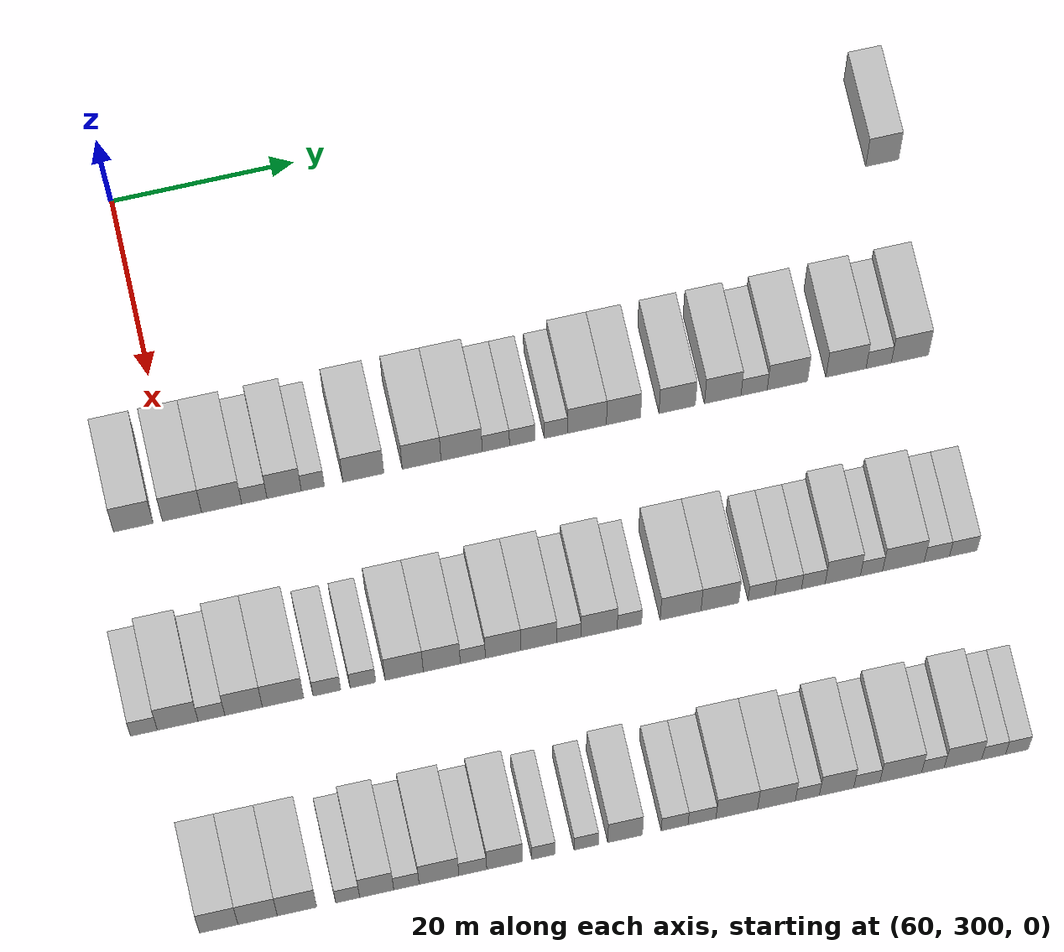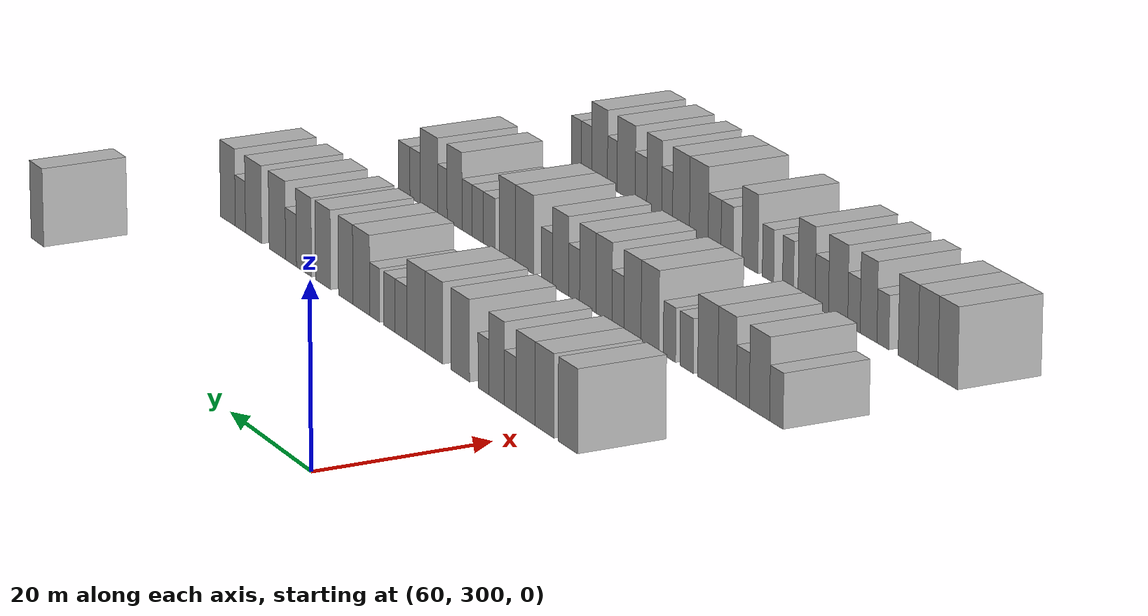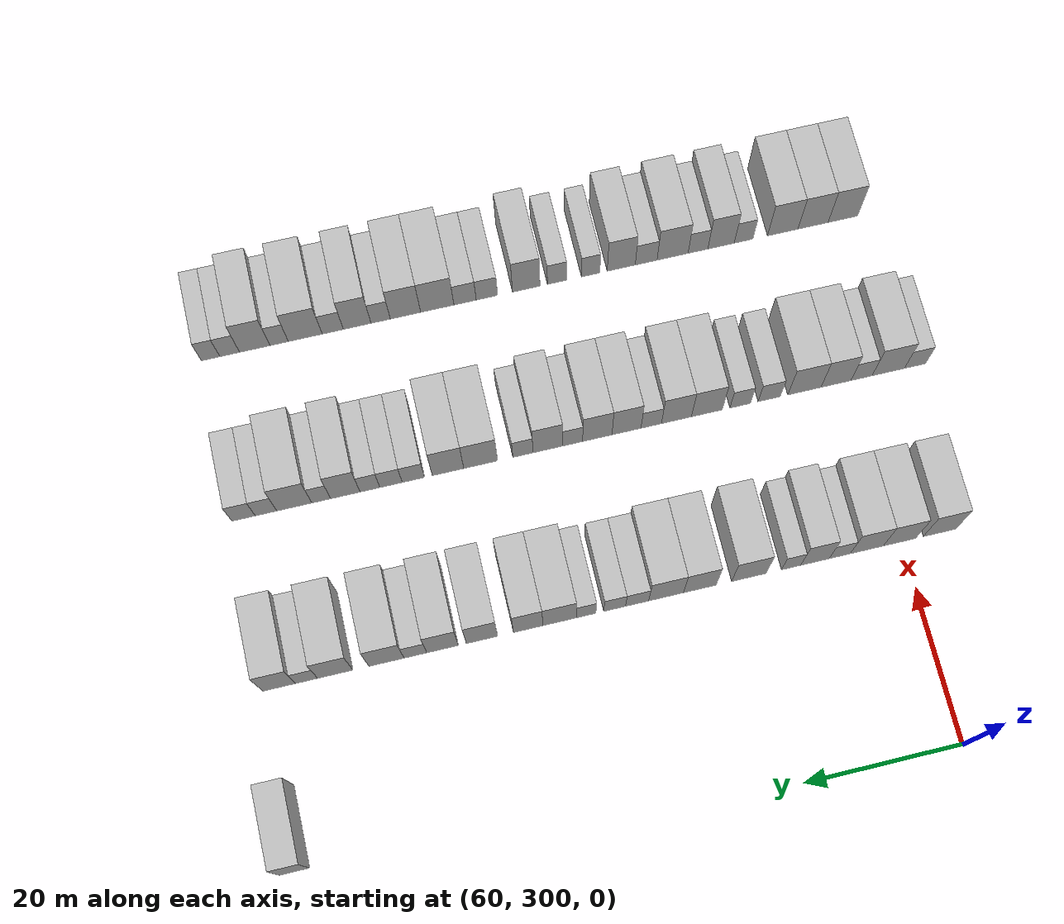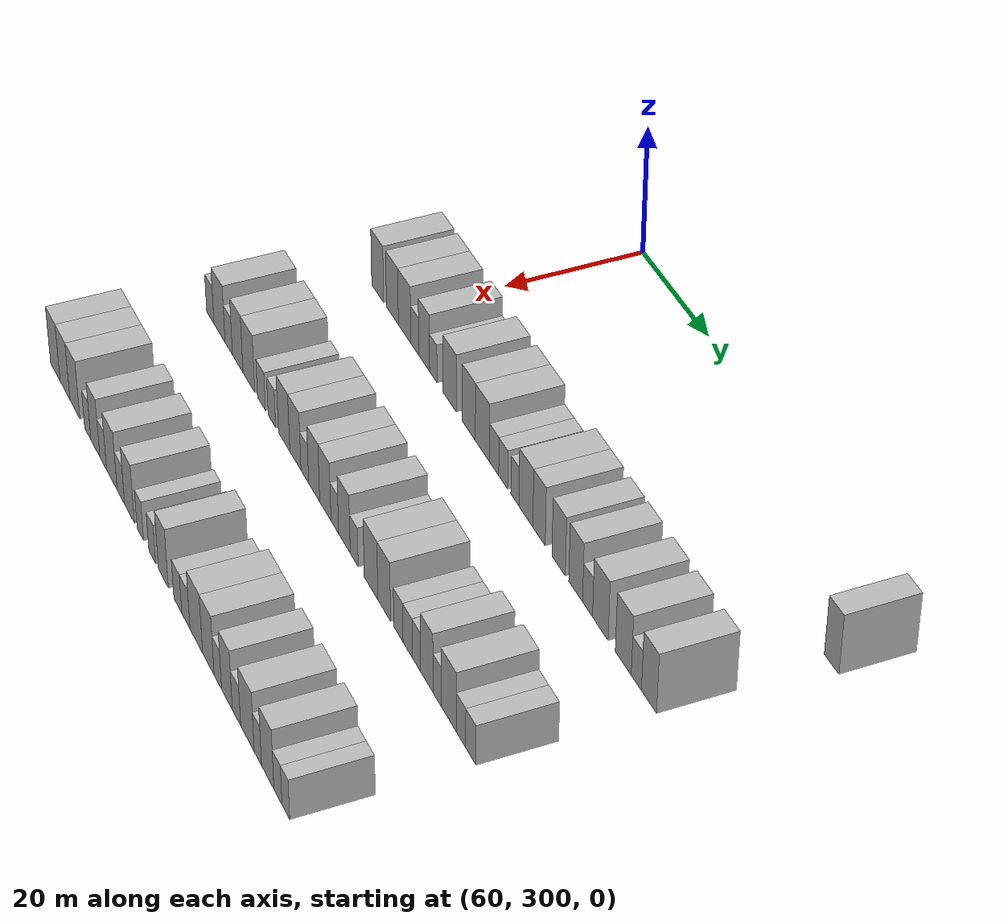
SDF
<sdf version="1.6">
 <world name="default">
  <model name="building_564">
   <static>1</static>
   <pose>69.0000 381.5241 0 0.000000 0.000000 0.000000</pose>
   <link name="link">
    <pose>0 0 4.50 0 0 0</pose>
    <collision name="collision"><geometry><box><size>10.0000 3.6331 9.0000</size></box></geometry></collision>
    <visual name="visual">
     <cast_shadows>0</cast_shadows>
     <geometry><box><size>10.0000 3.6331 9.0000</size></box></geometry>
     <material>
      <script>
       <uri>model://HANNAS_wall/materials/scripts</uri>
       <uri>model://HANNAS_wall/materials/textures</uri>
       <name>vrc/HANNAS_wall</name>
      </script>
     </material>
    </visual>
   </link>
  </model>
  <model name="building_737">
   <static>1</static>
   <pose>91.0000 295.0575 0 0.000000 0.000000 0.000000</pose>
   <link name="link">
    <pose>0 0 4.50 0 0 0</pose>
    <collision name="collision"><geometry><box><size>10.0000 4.2595 9.0000</size></box></geometry></collision>
    <visual name="visual">
     <cast_shadows>0</cast_shadows>
     <geometry><box><size>10.0000 4.2595 9.0000</size></box></geometry>
     <material>
      <script>
       <uri>model://HANNAS_wall/materials/scripts</uri>
       <uri>model://HANNAS_wall/materials/textures</uri>
       <name>vrc/HANNAS_wall</name>
      </script>
     </material>
    </visual>
   </link>
  </model>
  <model name="building_738">
   <static>1</static>
   <pose>91.0000 300.2954 0 0.000000 0.000000 0.000000</pose>
   <link name="link">
    <pose>0 0 4.50 0 0 0</pose>
    <collision name="collision"><geometry><box><size>10.0000 4.2164 9.0000</size></box></geometry></collision>
    <visual name="visual">
     <cast_shadows>0</cast_shadows>
     <geometry><box><size>10.0000 4.2164 9.0000</size></box></geometry>
     <material>
      <script>
       <uri>model://HANNAS_wall/materials/scripts</uri>
       <uri>model://HANNAS_wall/materials/textures</uri>
       <name>vrc/HANNAS_wall</name>
      </script>
     </material>
    </visual>
   </link>
  </model>
  <model name="building_739">
   <static>1</static>
   <pose>91.0000 304.5618 0 0.000000 0.000000 0.000000</pose>
   <link name="link">
    <pose>0 0 4.50 0 0 0</pose>
    <collision name="collision"><geometry><box><size>10.0000 4.3162 9.0000</size></box></geometry></collision>
    <visual name="visual">
     <cast_shadows>0</cast_shadows>
     <geometry><box><size>10.0000 4.3162 9.0000</size></box></geometry>
     <material>
      <script>
       <uri>model://HANNAS_wall/materials/scripts</uri>
       <uri>model://HANNAS_wall/materials/textures</uri>
       <name>vrc/HANNAS_wall</name>
      </script>
     </material>
    </visual>
   </link>
  </model>
  <model name="building_740">
   <static>1</static>
   <pose>91.0000 308.0821 0 0.000000 0.000000 0.000000</pose>
   <link name="link">
    <pose>0 0 3.00 0 0 0</pose>
    <collision name="collision"><geometry><box><size>10.0000 2.7245 6.0000</size></box></geometry></collision>
    <visual name="visual">
     <cast_shadows>0</cast_shadows>
     <geometry><box><size>10.0000 2.7245 6.0000</size></box></geometry>
     <material>
      <script>
       <uri>model://HANNAS_wall/materials/scripts</uri>
       <uri>model://HANNAS_wall/materials/textures</uri>
       <name>vrc/HANNAS_wall</name>
      </script>
     </material>
    </visual>
   </link>
  </model>
  <model name="building_741">
   <static>1</static>
   <pose>91.0000 311.2947 0 0.000000 0.000000 0.000000</pose>
   <link name="link">
    <pose>0 0 4.50 0 0 0</pose>
    <collision name="collision"><geometry><box><size>10.0000 3.7006 9.0000</size></box></geometry></collision>
    <visual name="visual">
     <cast_shadows>0</cast_shadows>
     <geometry><box><size>10.0000 3.7006 9.0000</size></box></geometry>
     <material>
      <script>
       <uri>model://HANNAS_wall/materials/scripts</uri>
       <uri>model://HANNAS_wall/materials/textures</uri>
       <name>vrc/HANNAS_wall</name>
      </script>
     </material>
    </visual>
   </link>
  </model>
  <model name="building_742">
   <static>1</static>
   <pose>91.0000 314.3877 0 0.000000 0.000000 0.000000</pose>
   <link name="link">
    <pose>0 0 3.00 0 0 0</pose>
    <collision name="collision"><geometry><box><size>10.0000 2.4853 6.0000</size></box></geometry></collision>
    <visual name="visual">
     <cast_shadows>0</cast_shadows>
     <geometry><box><size>10.0000 2.4853 6.0000</size></box></geometry>
     <material>
      <script>
       <uri>model://HANNAS_wall/materials/scripts</uri>
       <uri>model://HANNAS_wall/materials/textures</uri>
       <name>vrc/HANNAS_wall</name>
      </script>
     </material>
    </visual>
   </link>
  </model>
  <model name="building_743">
   <static>1</static>
   <pose>91.0000 319.8427 0 0.000000 0.000000 0.000000</pose>
   <link name="link">
    <pose>0 0 4.50 0 0 0</pose>
    <collision name="collision"><geometry><box><size>10.0000 4.4247 9.0000</size></box></geometry></collision>
    <visual name="visual">
     <cast_shadows>0</cast_shadows>
     <geometry><box><size>10.0000 4.4247 9.0000</size></box></geometry>
     <material>
      <script>
       <uri>model://HANNAS_wall/materials/scripts</uri>
       <uri>model://HANNAS_wall/materials/textures</uri>
       <name>vrc/HANNAS_wall</name>
      </script>
     </material>
    </visual>
   </link>
  </model>
  <model name="building_744">
   <static>1</static>
   <pose>91.0000 326.1490 0 0.000000 0.000000 0.000000</pose>
   <link name="link">
    <pose>0 0 4.50 0 0 0</pose>
    <collision name="collision"><geometry><box><size>10.0000 4.1880 9.0000</size></box></geometry></collision>
    <visual name="visual">
     <cast_shadows>0</cast_shadows>
     <geometry><box><size>10.0000 4.1880 9.0000</size></box></geometry>
     <material>
      <script>
       <uri>model://HANNAS_wall/materials/scripts</uri>
       <uri>model://HANNAS_wall/materials/textures</uri>
       <name>vrc/HANNAS_wall</name>
      </script>
     </material>
    </visual>
   </link>
  </model>
  <model name="building_745">
   <static>1</static>
   <pose>91.0000 330.4716 0 0.000000 0.000000 0.000000</pose>
   <link name="link">
    <pose>0 0 4.50 0 0 0</pose>
    <collision name="collision"><geometry><box><size>10.0000 4.4573 9.0000</size></box></geometry></collision>
    <visual name="visual">
     <cast_shadows>0</cast_shadows>
     <geometry><box><size>10.0000 4.4573 9.0000</size></box></geometry>
     <material>
      <script>
       <uri>model://HANNAS_wall/materials/scripts</uri>
       <uri>model://HANNAS_wall/materials/textures</uri>
       <name>vrc/HANNAS_wall</name>
      </script>
     </material>
    </visual>
   </link>
  </model>
  <model name="building_746">
   <static>1</static>
   <pose>91.0000 334.1785 0 0.000000 0.000000 0.000000</pose>
   <link name="link">
    <pose>0 0 3.00 0 0 0</pose>
    <collision name="collision"><geometry><box><size>10.0000 2.9564 6.0000</size></box></geometry></collision>
    <visual name="visual">
     <cast_shadows>0</cast_shadows>
     <geometry><box><size>10.0000 2.9564 6.0000</size></box></geometry>
     <material>
      <script>
       <uri>model://HANNAS_wall/materials/scripts</uri>
       <uri>model://HANNAS_wall/materials/textures</uri>
       <name>vrc/HANNAS_wall</name>
      </script>
     </material>
    </visual>
   </link>
  </model>
  <model name="building_747">
   <static>1</static>
   <pose>91.0000 337.0452 0 0.000000 0.000000 0.000000</pose>
   <link name="link">
    <pose>0 0 3.00 0 0 0</pose>
    <collision name="collision"><geometry><box><size>10.0000 2.7771 6.0000</size></box></geometry></collision>
    <visual name="visual">
     <cast_shadows>0</cast_shadows>
     <geometry><box><size>10.0000 2.7771 6.0000</size></box></geometry>
     <material>
      <script>
       <uri>model://HANNAS_wall/materials/scripts</uri>
       <uri>model://HANNAS_wall/materials/textures</uri>
       <name>vrc/HANNAS_wall</name>
      </script>
     </material>
    </visual>
   </link>
  </model>
  <model name="building_748">
   <static>1</static>
   <pose>91.0000 340.6838 0 0.000000 0.000000 0.000000</pose>
   <link name="link">
    <pose>0 0 3.00 0 0 0</pose>
    <collision name="collision"><geometry><box><size>10.0000 2.5001 6.0000</size></box></geometry></collision>
    <visual name="visual">
     <cast_shadows>0</cast_shadows>
     <geometry><box><size>10.0000 2.5001 6.0000</size></box></geometry>
     <material>
      <script>
       <uri>model://HANNAS_wall/materials/scripts</uri>
       <uri>model://HANNAS_wall/materials/textures</uri>
       <name>vrc/HANNAS_wall</name>
      </script>
     </material>
    </visual>
   </link>
  </model>
  <model name="building_749">
   <static>1</static>
   <pose>91.0000 344.0505 0 0.000000 0.000000 0.000000</pose>
   <link name="link">
    <pose>0 0 4.50 0 0 0</pose>
    <collision name="collision"><geometry><box><size>10.0000 4.2334 9.0000</size></box></geometry></collision>
    <visual name="visual">
     <cast_shadows>0</cast_shadows>
     <geometry><box><size>10.0000 4.2334 9.0000</size></box></geometry>
     <material>
      <script>
       <uri>model://HANNAS_wall/materials/scripts</uri>
       <uri>model://HANNAS_wall/materials/textures</uri>
       <name>vrc/HANNAS_wall</name>
      </script>
     </material>
    </visual>
   </link>
  </model>
  <model name="building_750">
   <static>1</static>
   <pose>91.0000 348.0234 0 0.000000 0.000000 0.000000</pose>
   <link name="link">
    <pose>0 0 4.50 0 0 0</pose>
    <collision name="collision"><geometry><box><size>10.0000 3.7123 9.0000</size></box></geometry></collision>
    <visual name="visual">
     <cast_shadows>0</cast_shadows>
     <geometry><box><size>10.0000 3.7123 9.0000</size></box></geometry>
     <material>
      <script>
       <uri>model://HANNAS_wall/materials/scripts</uri>
       <uri>model://HANNAS_wall/materials/textures</uri>
       <name>vrc/HANNAS_wall</name>
      </script>
     </material>
    </visual>
   </link>
  </model>
  <model name="building_751">
   <static>1</static>
   <pose>91.0000 353.8533 0 0.000000 0.000000 0.000000</pose>
   <link name="link">
    <pose>0 0 4.50 0 0 0</pose>
    <collision name="collision"><geometry><box><size>10.0000 3.9474 9.0000</size></box></geometry></collision>
    <visual name="visual">
     <cast_shadows>0</cast_shadows>
     <geometry><box><size>10.0000 3.9474 9.0000</size></box></geometry>
     <material>
      <script>
       <uri>model://HANNAS_wall/materials/scripts</uri>
       <uri>model://HANNAS_wall/materials/textures</uri>
       <name>vrc/HANNAS_wall</name>
      </script>
     </material>
    </visual>
   </link>
  </model>
  <model name="building_752">
   <static>1</static>
   <pose>91.0000 358.8148 0 0.000000 0.000000 0.000000</pose>
   <link name="link">
    <pose>0 0 4.50 0 0 0</pose>
    <collision name="collision"><geometry><box><size>10.0000 3.9758 9.0000</size></box></geometry></collision>
    <visual name="visual">
     <cast_shadows>0</cast_shadows>
     <geometry><box><size>10.0000 3.9758 9.0000</size></box></geometry>
     <material>
      <script>
       <uri>model://HANNAS_wall/materials/scripts</uri>
       <uri>model://HANNAS_wall/materials/textures</uri>
       <name>vrc/HANNAS_wall</name>
      </script>
     </material>
    </visual>
   </link>
  </model>
  <model name="building_753">
   <static>1</static>
   <pose>91.0000 362.2279 0 0.000000 0.000000 0.000000</pose>
   <link name="link">
    <pose>0 0 3.00 0 0 0</pose>
    <collision name="collision"><geometry><box><size>10.0000 2.8504 6.0000</size></box></geometry></collision>
    <visual name="visual">
     <cast_shadows>0</cast_shadows>
     <geometry><box><size>10.0000 2.8504 6.0000</size></box></geometry>
     <material>
      <script>
       <uri>model://HANNAS_wall/materials/scripts</uri>
       <uri>model://HANNAS_wall/materials/textures</uri>
       <name>vrc/HANNAS_wall</name>
      </script>
     </material>
    </visual>
   </link>
  </model>
  <model name="building_754">
   <static>1</static>
   <pose>91.0000 365.8547 0 0.000000 0.000000 0.000000</pose>
   <link name="link">
    <pose>0 0 4.50 0 0 0</pose>
    <collision name="collision"><geometry><box><size>10.0000 4.4030 9.0000</size></box></geometry></collision>
    <visual name="visual">
     <cast_shadows>0</cast_shadows>
     <geometry><box><size>10.0000 4.4030 9.0000</size></box></geometry>
     <material>
      <script>
       <uri>model://HANNAS_wall/materials/scripts</uri>
       <uri>model://HANNAS_wall/materials/textures</uri>
       <name>vrc/HANNAS_wall</name>
      </script>
     </material>
    </visual>
   </link>
  </model>
  <model name="building_755">
   <static>1</static>
   <pose>91.0000 372.2467 0 0.000000 0.000000 0.000000</pose>
   <link name="link">
    <pose>0 0 4.50 0 0 0</pose>
    <collision name="collision"><geometry><box><size>10.0000 4.3811 9.0000</size></box></geometry></collision>
    <visual name="visual">
     <cast_shadows>0</cast_shadows>
     <geometry><box><size>10.0000 4.3811 9.0000</size></box></geometry>
     <material>
      <script>
       <uri>model://HANNAS_wall/materials/scripts</uri>
       <uri>model://HANNAS_wall/materials/textures</uri>
       <name>vrc/HANNAS_wall</name>
      </script>
     </material>
    </visual>
   </link>
  </model>
  <model name="building_756">
   <static>1</static>
   <pose>91.0000 375.8169 0 0.000000 0.000000 0.000000</pose>
   <link name="link">
    <pose>0 0 3.00 0 0 0</pose>
    <collision name="collision"><geometry><box><size>10.0000 2.7593 6.0000</size></box></geometry></collision>
    <visual name="visual">
     <cast_shadows>0</cast_shadows>
     <geometry><box><size>10.0000 2.7593 6.0000</size></box></geometry>
     <material>
      <script>
       <uri>model://HANNAS_wall/materials/scripts</uri>
       <uri>model://HANNAS_wall/materials/textures</uri>
       <name>vrc/HANNAS_wall</name>
      </script>
     </material>
    </visual>
   </link>
  </model>
  <model name="building_757">
   <static>1</static>
   <pose>91.0000 379.2247 0 0.000000 0.000000 0.000000</pose>
   <link name="link">
    <pose>0 0 4.50 0 0 0</pose>
    <collision name="collision"><geometry><box><size>10.0000 4.0563 9.0000</size></box></geometry></collision>
    <visual name="visual">
     <cast_shadows>0</cast_shadows>
     <geometry><box><size>10.0000 4.0563 9.0000</size></box></geometry>
     <material>
      <script>
       <uri>model://HANNAS_wall/materials/scripts</uri>
       <uri>model://HANNAS_wall/materials/textures</uri>
       <name>vrc/HANNAS_wall</name>
      </script>
     </material>
    </visual>
   </link>
  </model>
  <model name="building_920">
   <static>1</static>
   <pose>113.0000 291.6880 0 0.000000 0.000000 0.000000</pose>
   <link name="link">
    <pose>0 0 3.00 0 0 0</pose>
    <collision name="collision"><geometry><box><size>10.0000 2.8506 6.0000</size></box></geometry></collision>
    <visual name="visual">
     <cast_shadows>0</cast_shadows>
     <geometry><box><size>10.0000 2.8506 6.0000</size></box></geometry>
     <material>
      <script>
       <uri>model://HANNAS_wall/materials/scripts</uri>
       <uri>model://HANNAS_wall/materials/textures</uri>
       <name>vrc/HANNAS_wall</name>
      </script>
     </material>
    </visual>
   </link>
  </model>
  <model name="building_921">
   <static>1</static>
   <pose>113.0000 295.2827 0 0.000000 0.000000 0.000000</pose>
   <link name="link">
    <pose>0 0 4.50 0 0 0</pose>
    <collision name="collision"><geometry><box><size>10.0000 4.3388 9.0000</size></box></geometry></collision>
    <visual name="visual">
     <cast_shadows>0</cast_shadows>
     <geometry><box><size>10.0000 4.3388 9.0000</size></box></geometry>
     <material>
      <script>
       <uri>model://HANNAS_wall/materials/scripts</uri>
       <uri>model://HANNAS_wall/materials/textures</uri>
       <name>vrc/HANNAS_wall</name>
      </script>
     </material>
    </visual>
   </link>
  </model>
  <model name="building_922">
   <static>1</static>
   <pose>113.0000 298.8748 0 0.000000 0.000000 0.000000</pose>
   <link name="link">
    <pose>0 0 3.00 0 0 0</pose>
    <collision name="collision"><geometry><box><size>10.0000 2.8454 6.0000</size></box></geometry></collision>
    <visual name="visual">
     <cast_shadows>0</cast_shadows>
     <geometry><box><size>10.0000 2.8454 6.0000</size></box></geometry>
     <material>
      <script>
       <uri>model://HANNAS_wall/materials/scripts</uri>
       <uri>model://HANNAS_wall/materials/textures</uri>
       <name>vrc/HANNAS_wall</name>
      </script>
     </material>
    </visual>
   </link>
  </model>
  <model name="building_923">
   <static>1</static>
   <pose>113.0000 302.3006 0 0.000000 0.000000 0.000000</pose>
   <link name="link">
    <pose>0 0 4.50 0 0 0</pose>
    <collision name="collision"><geometry><box><size>10.0000 4.0062 9.0000</size></box></geometry></collision>
    <visual name="visual">
     <cast_shadows>0</cast_shadows>
     <geometry><box><size>10.0000 4.0062 9.0000</size></box></geometry>
     <material>
      <script>
       <uri>model://HANNAS_wall/materials/scripts</uri>
       <uri>model://HANNAS_wall/materials/textures</uri>
       <name>vrc/HANNAS_wall</name>
      </script>
     </material>
    </visual>
   </link>
  </model>
  <model name="building_924">
   <static>1</static>
   <pose>113.0000 306.5124 0 0.000000 0.000000 0.000000</pose>
   <link name="link">
    <pose>0 0 4.50 0 0 0</pose>
    <collision name="collision"><geometry><box><size>10.0000 4.4174 9.0000</size></box></geometry></collision>
    <visual name="visual">
     <cast_shadows>0</cast_shadows>
     <geometry><box><size>10.0000 4.4174 9.0000</size></box></geometry>
     <material>
      <script>
       <uri>model://HANNAS_wall/materials/scripts</uri>
       <uri>model://HANNAS_wall/materials/textures</uri>
       <name>vrc/HANNAS_wall</name>
      </script>
     </material>
    </visual>
   </link>
  </model>
  <model name="building_925">
   <static>1</static>
   <pose>113.0000 311.1987 0 0.000000 0.000000 0.000000</pose>
   <link name="link">
    <pose>0 0 3.00 0 0 0</pose>
    <collision name="collision"><geometry><box><size>10.0000 2.9552 6.0000</size></box></geometry></collision>
    <visual name="visual">
     <cast_shadows>0</cast_shadows>
     <geometry><box><size>10.0000 2.9552 6.0000</size></box></geometry>
     <material>
      <script>
       <uri>model://HANNAS_wall/materials/scripts</uri>
       <uri>model://HANNAS_wall/materials/textures</uri>
       <name>vrc/HANNAS_wall</name>
      </script>
     </material>
    </visual>
   </link>
  </model>
  <model name="building_926">
   <static>1</static>
   <pose>113.0000 315.0466 0 0.000000 0.000000 0.000000</pose>
   <link name="link">
    <pose>0 0 3.00 0 0 0</pose>
    <collision name="collision"><geometry><box><size>10.0000 2.7404 6.0000</size></box></geometry></collision>
    <visual name="visual">
     <cast_shadows>0</cast_shadows>
     <geometry><box><size>10.0000 2.7404 6.0000</size></box></geometry>
     <material>
      <script>
       <uri>model://HANNAS_wall/materials/scripts</uri>
       <uri>model://HANNAS_wall/materials/textures</uri>
       <name>vrc/HANNAS_wall</name>
      </script>
     </material>
    </visual>
   </link>
  </model>
  <model name="building_927">
   <static>1</static>
   <pose>113.0000 319.4593 0 0.000000 0.000000 0.000000</pose>
   <link name="link">
    <pose>0 0 4.50 0 0 0</pose>
    <collision name="collision"><geometry><box><size>10.0000 4.0851 9.0000</size></box></geometry></collision>
    <visual name="visual">
     <cast_shadows>0</cast_shadows>
     <geometry><box><size>10.0000 4.0851 9.0000</size></box></geometry>
     <material>
      <script>
       <uri>model://HANNAS_wall/materials/scripts</uri>
       <uri>model://HANNAS_wall/materials/textures</uri>
       <name>vrc/HANNAS_wall</name>
      </script>
     </material>
    </visual>
   </link>
  </model>
  <model name="building_928">
   <static>1</static>
   <pose>113.0000 323.4827 0 0.000000 0.000000 0.000000</pose>
   <link name="link">
    <pose>0 0 4.50 0 0 0</pose>
    <collision name="collision"><geometry><box><size>10.0000 3.9617 9.0000</size></box></geometry></collision>
    <visual name="visual">
     <cast_shadows>0</cast_shadows>
     <geometry><box><size>10.0000 3.9617 9.0000</size></box></geometry>
     <material>
      <script>
       <uri>model://HANNAS_wall/materials/scripts</uri>
       <uri>model://HANNAS_wall/materials/textures</uri>
       <name>vrc/HANNAS_wall</name>
      </script>
     </material>
    </visual>
   </link>
  </model>
  <model name="building_929">
   <static>1</static>
   <pose>113.0000 326.8100 0 0.000000 0.000000 0.000000</pose>
   <link name="link">
    <pose>0 0 3.00 0 0 0</pose>
    <collision name="collision"><geometry><box><size>10.0000 2.6929 6.0000</size></box></geometry></collision>
    <visual name="visual">
     <cast_shadows>0</cast_shadows>
     <geometry><box><size>10.0000 2.6929 6.0000</size></box></geometry>
     <material>
      <script>
       <uri>model://HANNAS_wall/materials/scripts</uri>
       <uri>model://HANNAS_wall/materials/textures</uri>
       <name>vrc/HANNAS_wall</name>
      </script>
     </material>
    </visual>
   </link>
  </model>
  <model name="building_930">
   <static>1</static>
   <pose>113.0000 330.0624 0 0.000000 0.000000 0.000000</pose>
   <link name="link">
    <pose>0 0 4.50 0 0 0</pose>
    <collision name="collision"><geometry><box><size>10.0000 3.8118 9.0000</size></box></geometry></collision>
    <visual name="visual">
     <cast_shadows>0</cast_shadows>
     <geometry><box><size>10.0000 3.8118 9.0000</size></box></geometry>
     <material>
      <script>
       <uri>model://HANNAS_wall/materials/scripts</uri>
       <uri>model://HANNAS_wall/materials/textures</uri>
       <name>vrc/HANNAS_wall</name>
      </script>
     </material>
    </visual>
   </link>
  </model>
  <model name="building_931">
   <static>1</static>
   <pose>113.0000 333.8979 0 0.000000 0.000000 0.000000</pose>
   <link name="link">
    <pose>0 0 4.50 0 0 0</pose>
    <collision name="collision"><geometry><box><size>10.0000 3.8593 9.0000</size></box></geometry></collision>
    <visual name="visual">
     <cast_shadows>0</cast_shadows>
     <geometry><box><size>10.0000 3.8593 9.0000</size></box></geometry>
     <material>
      <script>
       <uri>model://HANNAS_wall/materials/scripts</uri>
       <uri>model://HANNAS_wall/materials/textures</uri>
       <name>vrc/HANNAS_wall</name>
      </script>
     </material>
    </visual>
   </link>
  </model>
  <model name="building_932">
   <static>1</static>
   <pose>113.0000 337.1255 0 0.000000 0.000000 0.000000</pose>
   <link name="link">
    <pose>0 0 3.00 0 0 0</pose>
    <collision name="collision"><geometry><box><size>10.0000 2.5958 6.0000</size></box></geometry></collision>
    <visual name="visual">
     <cast_shadows>0</cast_shadows>
     <geometry><box><size>10.0000 2.5958 6.0000</size></box></geometry>
     <material>
      <script>
       <uri>model://HANNAS_wall/materials/scripts</uri>
       <uri>model://HANNAS_wall/materials/textures</uri>
       <name>vrc/HANNAS_wall</name>
      </script>
     </material>
    </visual>
   </link>
  </model>
  <model name="building_933">
   <static>1</static>
   <pose>113.0000 340.3628 0 0.000000 0.000000 0.000000</pose>
   <link name="link">
    <pose>0 0 4.50 0 0 0</pose>
    <collision name="collision"><geometry><box><size>10.0000 3.8788 9.0000</size></box></geometry></collision>
    <visual name="visual">
     <cast_shadows>0</cast_shadows>
     <geometry><box><size>10.0000 3.8788 9.0000</size></box></geometry>
     <material>
      <script>
       <uri>model://HANNAS_wall/materials/scripts</uri>
       <uri>model://HANNAS_wall/materials/textures</uri>
       <name>vrc/HANNAS_wall</name>
      </script>
     </material>
    </visual>
   </link>
  </model>
  <model name="building_934">
   <static>1</static>
   <pose>113.0000 343.6134 0 0.000000 0.000000 0.000000</pose>
   <link name="link">
    <pose>0 0 3.00 0 0 0</pose>
    <collision name="collision"><geometry><box><size>10.0000 2.6223 6.0000</size></box></geometry></collision>
    <visual name="visual">
     <cast_shadows>0</cast_shadows>
     <geometry><box><size>10.0000 2.6223 6.0000</size></box></geometry>
     <material>
      <script>
       <uri>model://HANNAS_wall/materials/scripts</uri>
       <uri>model://HANNAS_wall/materials/textures</uri>
       <name>vrc/HANNAS_wall</name>
      </script>
     </material>
    </visual>
   </link>
  </model>
  <model name="building_935">
   <static>1</static>
   <pose>113.0000 349.1212 0 0.000000 0.000000 0.000000</pose>
   <link name="link">
    <pose>0 0 4.50 0 0 0</pose>
    <collision name="collision"><geometry><box><size>10.0000 4.3934 9.0000</size></box></geometry></collision>
    <visual name="visual">
     <cast_shadows>0</cast_shadows>
     <geometry><box><size>10.0000 4.3934 9.0000</size></box></geometry>
     <material>
      <script>
       <uri>model://HANNAS_wall/materials/scripts</uri>
       <uri>model://HANNAS_wall/materials/textures</uri>
       <name>vrc/HANNAS_wall</name>
      </script>
     </material>
    </visual>
   </link>
  </model>
  <model name="building_936">
   <static>1</static>
   <pose>113.0000 353.3514 0 0.000000 0.000000 0.000000</pose>
   <link name="link">
    <pose>0 0 4.50 0 0 0</pose>
    <collision name="collision"><geometry><box><size>10.0000 4.0671 9.0000</size></box></geometry></collision>
    <visual name="visual">
     <cast_shadows>0</cast_shadows>
     <geometry><box><size>10.0000 4.0671 9.0000</size></box></geometry>
     <material>
      <script>
       <uri>model://HANNAS_wall/materials/scripts</uri>
       <uri>model://HANNAS_wall/materials/textures</uri>
       <name>vrc/HANNAS_wall</name>
      </script>
     </material>
    </visual>
   </link>
  </model>
  <model name="building_937">
   <static>1</static>
   <pose>113.0000 357.8324 0 0.000000 0.000000 0.000000</pose>
   <link name="link">
    <pose>0 0 3.00 0 0 0</pose>
    <collision name="collision"><geometry><box><size>10.0000 2.8948 6.0000</size></box></geometry></collision>
    <visual name="visual">
     <cast_shadows>0</cast_shadows>
     <geometry><box><size>10.0000 2.8948 6.0000</size></box></geometry>
     <material>
      <script>
       <uri>model://HANNAS_wall/materials/scripts</uri>
       <uri>model://HANNAS_wall/materials/textures</uri>
       <name>vrc/HANNAS_wall</name>
      </script>
     </material>
    </visual>
   </link>
  </model>
  <model name="building_938">
   <static>1</static>
   <pose>113.0000 360.7175 0 0.000000 0.000000 0.000000</pose>
   <link name="link">
    <pose>0 0 3.00 0 0 0</pose>
    <collision name="collision"><geometry><box><size>10.0000 2.8755 6.0000</size></box></geometry></collision>
    <visual name="visual">
     <cast_shadows>0</cast_shadows>
     <geometry><box><size>10.0000 2.8755 6.0000</size></box></geometry>
     <material>
      <script>
       <uri>model://HANNAS_wall/materials/scripts</uri>
       <uri>model://HANNAS_wall/materials/textures</uri>
       <name>vrc/HANNAS_wall</name>
      </script>
     </material>
    </visual>
   </link>
  </model>
  <model name="building_939">
   <static>1</static>
   <pose>113.0000 363.4331 0 0.000000 0.000000 0.000000</pose>
   <link name="link">
    <pose>0 0 3.00 0 0 0</pose>
    <collision name="collision"><geometry><box><size>10.0000 2.5556 6.0000</size></box></geometry></collision>
    <visual name="visual">
     <cast_shadows>0</cast_shadows>
     <geometry><box><size>10.0000 2.5556 6.0000</size></box></geometry>
     <material>
      <script>
       <uri>model://HANNAS_wall/materials/scripts</uri>
       <uri>model://HANNAS_wall/materials/textures</uri>
       <name>vrc/HANNAS_wall</name>
      </script>
     </material>
    </visual>
   </link>
  </model>
  <model name="building_940">
   <static>1</static>
   <pose>113.0000 366.6085 0 0.000000 0.000000 0.000000</pose>
   <link name="link">
    <pose>0 0 4.50 0 0 0</pose>
    <collision name="collision"><geometry><box><size>10.0000 3.7951 9.0000</size></box></geometry></collision>
    <visual name="visual">
     <cast_shadows>0</cast_shadows>
     <geometry><box><size>10.0000 3.7951 9.0000</size></box></geometry>
     <material>
      <script>
       <uri>model://HANNAS_wall/materials/scripts</uri>
       <uri>model://HANNAS_wall/materials/textures</uri>
       <name>vrc/HANNAS_wall</name>
      </script>
     </material>
    </visual>
   </link>
  </model>
  <model name="building_941">
   <static>1</static>
   <pose>113.0000 369.7100 0 0.000000 0.000000 0.000000</pose>
   <link name="link">
    <pose>0 0 3.00 0 0 0</pose>
    <collision name="collision"><geometry><box><size>10.0000 2.4079 6.0000</size></box></geometry></collision>
    <visual name="visual">
     <cast_shadows>0</cast_shadows>
     <geometry><box><size>10.0000 2.4079 6.0000</size></box></geometry>
     <material>
      <script>
       <uri>model://HANNAS_wall/materials/scripts</uri>
       <uri>model://HANNAS_wall/materials/textures</uri>
       <name>vrc/HANNAS_wall</name>
      </script>
     </material>
    </visual>
   </link>
  </model>
  <model name="building_942">
   <static>1</static>
   <pose>113.0000 373.1637 0 0.000000 0.000000 0.000000</pose>
   <link name="link">
    <pose>0 0 4.50 0 0 0</pose>
    <collision name="collision"><geometry><box><size>10.0000 4.4995 9.0000</size></box></geometry></collision>
    <visual name="visual">
     <cast_shadows>0</cast_shadows>
     <geometry><box><size>10.0000 4.4995 9.0000</size></box></geometry>
     <material>
      <script>
       <uri>model://HANNAS_wall/materials/scripts</uri>
       <uri>model://HANNAS_wall/materials/textures</uri>
       <name>vrc/HANNAS_wall</name>
      </script>
     </material>
    </visual>
   </link>
  </model>
  <model name="building_943">
   <static>1</static>
   <pose>113.0000 376.7850 0 0.000000 0.000000 0.000000</pose>
   <link name="link">
    <pose>0 0 3.00 0 0 0</pose>
    <collision name="collision"><geometry><box><size>10.0000 2.7430 6.0000</size></box></geometry></collision>
    <visual name="visual">
     <cast_shadows>0</cast_shadows>
     <geometry><box><size>10.0000 2.7430 6.0000</size></box></geometry>
     <material>
      <script>
       <uri>model://HANNAS_wall/materials/scripts</uri>
       <uri>model://HANNAS_wall/materials/textures</uri>
       <name>vrc/HANNAS_wall</name>
      </script>
     </material>
    </visual>
   </link>
  </model>
  <model name="building_944">
   <static>1</static>
   <pose>113.0000 379.6490 0 0.000000 0.000000 0.000000</pose>
   <link name="link">
    <pose>0 0 3.00 0 0 0</pose>
    <collision name="collision"><geometry><box><size>10.0000 2.9849 6.0000</size></box></geometry></collision>
    <visual name="visual">
     <cast_shadows>0</cast_shadows>
     <geometry><box><size>10.0000 2.9849 6.0000</size></box></geometry>
     <material>
      <script>
       <uri>model://HANNAS_wall/materials/scripts</uri>
       <uri>model://HANNAS_wall/materials/textures</uri>
       <name>vrc/HANNAS_wall</name>
      </script>
     </material>
    </visual>
   </link>
  </model>
  <model name="building_1112">
   <static>1</static>
   <pose>135.0000 295.0638 0 0.000000 0.000000 0.000000</pose>
   <link name="link">
    <pose>0 0 4.50 0 0 0</pose>
    <collision name="collision"><geometry><box><size>10.0000 4.0504 9.0000</size></box></geometry></collision>
    <visual name="visual">
     <cast_shadows>0</cast_shadows>
     <geometry><box><size>10.0000 4.0504 9.0000</size></box></geometry>
     <material>
      <script>
       <uri>model://HANNAS_wall/materials/scripts</uri>
       <uri>model://HANNAS_wall/materials/textures</uri>
       <name>vrc/HANNAS_wall</name>
      </script>
     </material>
    </visual>
   </link>
  </model>
  <model name="building_1113">
   <static>1</static>
   <pose>135.0000 299.1623 0 0.000000 0.000000 0.000000</pose>
   <link name="link">
    <pose>0 0 4.50 0 0 0</pose>
    <collision name="collision"><geometry><box><size>10.0000 4.1466 9.0000</size></box></geometry></collision>
    <visual name="visual">
     <cast_shadows>0</cast_shadows>
     <geometry><box><size>10.0000 4.1466 9.0000</size></box></geometry>
     <material>
      <script>
       <uri>model://HANNAS_wall/materials/scripts</uri>
       <uri>model://HANNAS_wall/materials/textures</uri>
       <name>vrc/HANNAS_wall</name>
      </script>
     </material>
    </visual>
   </link>
  </model>
  <model name="building_1114">
   <static>1</static>
   <pose>135.0000 303.3200 0 0.000000 0.000000 0.000000</pose>
   <link name="link">
    <pose>0 0 4.50 0 0 0</pose>
    <collision name="collision"><geometry><box><size>10.0000 4.1686 9.0000</size></box></geometry></collision>
    <visual name="visual">
     <cast_shadows>0</cast_shadows>
     <geometry><box><size>10.0000 4.1686 9.0000</size></box></geometry>
     <material>
      <script>
       <uri>model://HANNAS_wall/materials/scripts</uri>
       <uri>model://HANNAS_wall/materials/textures</uri>
       <name>vrc/HANNAS_wall</name>
      </script>
     </material>
    </visual>
   </link>
  </model>
  <model name="building_1115">
   <static>1</static>
   <pose>135.0000 308.6743 0 0.000000 0.000000 0.000000</pose>
   <link name="link">
    <pose>0 0 3.00 0 0 0</pose>
    <collision name="collision"><geometry><box><size>10.0000 2.5400 6.0000</size></box></geometry></collision>
    <visual name="visual">
     <cast_shadows>0</cast_shadows>
     <geometry><box><size>10.0000 2.5400 6.0000</size></box></geometry>
     <material>
      <script>
       <uri>model://HANNAS_wall/materials/scripts</uri>
       <uri>model://HANNAS_wall/materials/textures</uri>
       <name>vrc/HANNAS_wall</name>
      </script>
     </material>
    </visual>
   </link>
  </model>
  <model name="building_1116">
   <static>1</static>
   <pose>135.0000 311.7482 0 0.000000 0.000000 0.000000</pose>
   <link name="link">
    <pose>0 0 4.50 0 0 0</pose>
    <collision name="collision"><geometry><box><size>10.0000 3.6078 9.0000</size></box></geometry></collision>
    <visual name="visual">
     <cast_shadows>0</cast_shadows>
     <geometry><box><size>10.0000 3.6078 9.0000</size></box></geometry>
     <material>
      <script>
       <uri>model://HANNAS_wall/materials/scripts</uri>
       <uri>model://HANNAS_wall/materials/textures</uri>
       <name>vrc/HANNAS_wall</name>
      </script>
     </material>
    </visual>
   </link>
  </model>
  <model name="building_1117">
   <static>1</static>
   <pose>135.0000 314.8971 0 0.000000 0.000000 0.000000</pose>
   <link name="link">
    <pose>0 0 3.00 0 0 0</pose>
    <collision name="collision"><geometry><box><size>10.0000 2.6901 6.0000</size></box></geometry></collision>
    <visual name="visual">
     <cast_shadows>0</cast_shadows>
     <geometry><box><size>10.0000 2.6901 6.0000</size></box></geometry>
     <material>
      <script>
       <uri>model://HANNAS_wall/materials/scripts</uri>
       <uri>model://HANNAS_wall/materials/textures</uri>
       <name>vrc/HANNAS_wall</name>
      </script>
     </material>
    </visual>
   </link>
  </model>
  <model name="building_1118">
   <static>1</static>
   <pose>135.0000 318.3498 0 0.000000 0.000000 0.000000</pose>
   <link name="link">
    <pose>0 0 4.50 0 0 0</pose>
    <collision name="collision"><geometry><box><size>10.0000 4.2153 9.0000</size></box></geometry></collision>
    <visual name="visual">
     <cast_shadows>0</cast_shadows>
     <geometry><box><size>10.0000 4.2153 9.0000</size></box></geometry>
     <material>
      <script>
       <uri>model://HANNAS_wall/materials/scripts</uri>
       <uri>model://HANNAS_wall/materials/textures</uri>
       <name>vrc/HANNAS_wall</name>
      </script>
     </material>
    </visual>
   </link>
  </model>
  <model name="building_1119">
   <static>1</static>
   <pose>135.0000 321.9337 0 0.000000 0.000000 0.000000</pose>
   <link name="link">
    <pose>0 0 3.00 0 0 0</pose>
    <collision name="collision"><geometry><box><size>10.0000 2.9524 6.0000</size></box></geometry></collision>
    <visual name="visual">
     <cast_shadows>0</cast_shadows>
     <geometry><box><size>10.0000 2.9524 6.0000</size></box></geometry>
     <material>
      <script>
       <uri>model://HANNAS_wall/materials/scripts</uri>
       <uri>model://HANNAS_wall/materials/textures</uri>
       <name>vrc/HANNAS_wall</name>
      </script>
     </material>
    </visual>
   </link>
  </model>
  <model name="building_1120">
   <static>1</static>
   <pose>135.0000 325.3066 0 0.000000 0.000000 0.000000</pose>
   <link name="link">
    <pose>0 0 4.50 0 0 0</pose>
    <collision name="collision"><geometry><box><size>10.0000 3.7934 9.0000</size></box></geometry></collision>
    <visual name="visual">
     <cast_shadows>0</cast_shadows>
     <geometry><box><size>10.0000 3.7934 9.0000</size></box></geometry>
     <material>
      <script>
       <uri>model://HANNAS_wall/materials/scripts</uri>
       <uri>model://HANNAS_wall/materials/textures</uri>
       <name>vrc/HANNAS_wall</name>
      </script>
     </material>
    </visual>
   </link>
  </model>
  <model name="building_1121">
   <static>1</static>
   <pose>135.0000 329.4419 0 0.000000 0.000000 0.000000</pose>
   <link name="link">
    <pose>0 0 3.00 0 0 0</pose>
    <collision name="collision"><geometry><box><size>10.0000 2.4772 6.0000</size></box></geometry></collision>
    <visual name="visual">
     <cast_shadows>0</cast_shadows>
     <geometry><box><size>10.0000 2.4772 6.0000</size></box></geometry>
     <material>
      <script>
       <uri>model://HANNAS_wall/materials/scripts</uri>
       <uri>model://HANNAS_wall/materials/textures</uri>
       <name>vrc/HANNAS_wall</name>
      </script>
     </material>
    </visual>
   </link>
  </model>
  <model name="building_1122">
   <static>1</static>
   <pose>135.0000 333.9709 0 0.000000 0.000000 0.000000</pose>
   <link name="link">
    <pose>0 0 3.00 0 0 0</pose>
    <collision name="collision"><geometry><box><size>10.0000 2.5807 6.0000</size></box></geometry></collision>
    <visual name="visual">
     <cast_shadows>0</cast_shadows>
     <geometry><box><size>10.0000 2.5807 6.0000</size></box></geometry>
     <material>
      <script>
       <uri>model://HANNAS_wall/materials/scripts</uri>
       <uri>model://HANNAS_wall/materials/textures</uri>
       <name>vrc/HANNAS_wall</name>
      </script>
     </material>
    </visual>
   </link>
  </model>
  <model name="building_1123">
   <static>1</static>
   <pose>135.0000 338.1033 0 0.000000 0.000000 0.000000</pose>
   <link name="link">
    <pose>0 0 4.50 0 0 0</pose>
    <collision name="collision"><geometry><box><size>10.0000 3.6841 9.0000</size></box></geometry></collision>
    <visual name="visual">
     <cast_shadows>0</cast_shadows>
     <geometry><box><size>10.0000 3.6841 9.0000</size></box></geometry>
     <material>
      <script>
       <uri>model://HANNAS_wall/materials/scripts</uri>
       <uri>model://HANNAS_wall/materials/textures</uri>
       <name>vrc/HANNAS_wall</name>
      </script>
     </material>
    </visual>
   </link>
  </model>
  <model name="building_1124">
   <static>1</static>
   <pose>135.0000 343.3766 0 0.000000 0.000000 0.000000</pose>
   <link name="link">
    <pose>0 0 3.00 0 0 0</pose>
    <collision name="collision"><geometry><box><size>10.0000 2.8626 6.0000</size></box></geometry></collision>
    <visual name="visual">
     <cast_shadows>0</cast_shadows>
     <geometry><box><size>10.0000 2.8626 6.0000</size></box></geometry>
     <material>
      <script>
       <uri>model://HANNAS_wall/materials/scripts</uri>
       <uri>model://HANNAS_wall/materials/textures</uri>
       <name>vrc/HANNAS_wall</name>
      </script>
     </material>
    </visual>
   </link>
  </model>
  <model name="building_1125">
   <static>1</static>
   <pose>135.0000 346.2956 0 0.000000 0.000000 0.000000</pose>
   <link name="link">
    <pose>0 0 3.00 0 0 0</pose>
    <collision name="collision"><geometry><box><size>10.0000 2.9753 6.0000</size></box></geometry></collision>
    <visual name="visual">
     <cast_shadows>0</cast_shadows>
     <geometry><box><size>10.0000 2.9753 6.0000</size></box></geometry>
     <material>
      <script>
       <uri>model://HANNAS_wall/materials/scripts</uri>
       <uri>model://HANNAS_wall/materials/textures</uri>
       <name>vrc/HANNAS_wall</name>
      </script>
     </material>
    </visual>
   </link>
  </model>
  <model name="building_1126">
   <static>1</static>
   <pose>135.0000 350.0028 0 0.000000 0.000000 0.000000</pose>
   <link name="link">
    <pose>0 0 4.50 0 0 0</pose>
    <collision name="collision"><geometry><box><size>10.0000 4.4391 9.0000</size></box></geometry></collision>
    <visual name="visual">
     <cast_shadows>0</cast_shadows>
     <geometry><box><size>10.0000 4.4391 9.0000</size></box></geometry>
     <material>
      <script>
       <uri>model://HANNAS_wall/materials/scripts</uri>
       <uri>model://HANNAS_wall/materials/textures</uri>
       <name>vrc/HANNAS_wall</name>
      </script>
     </material>
    </visual>
   </link>
  </model>
  <model name="building_1127">
   <static>1</static>
   <pose>135.0000 354.2398 0 0.000000 0.000000 0.000000</pose>
   <link name="link">
    <pose>0 0 4.50 0 0 0</pose>
    <collision name="collision"><geometry><box><size>10.0000 4.0350 9.0000</size></box></geometry></collision>
    <visual name="visual">
     <cast_shadows>0</cast_shadows>
     <geometry><box><size>10.0000 4.0350 9.0000</size></box></geometry>
     <material>
      <script>
       <uri>model://HANNAS_wall/materials/scripts</uri>
       <uri>model://HANNAS_wall/materials/textures</uri>
       <name>vrc/HANNAS_wall</name>
      </script>
     </material>
    </visual>
   </link>
  </model>
  <model name="building_1128">
   <static>1</static>
   <pose>135.0000 357.5354 0 0.000000 0.000000 0.000000</pose>
   <link name="link">
    <pose>0 0 3.00 0 0 0</pose>
    <collision name="collision"><geometry><box><size>10.0000 2.5561 6.0000</size></box></geometry></collision>
    <visual name="visual">
     <cast_shadows>0</cast_shadows>
     <geometry><box><size>10.0000 2.5561 6.0000</size></box></geometry>
     <material>
      <script>
       <uri>model://HANNAS_wall/materials/scripts</uri>
       <uri>model://HANNAS_wall/materials/textures</uri>
       <name>vrc/HANNAS_wall</name>
      </script>
     </material>
    </visual>
   </link>
  </model>
  <model name="building_1129">
   <static>1</static>
   <pose>135.0000 360.6477 0 0.000000 0.000000 0.000000</pose>
   <link name="link">
    <pose>0 0 4.50 0 0 0</pose>
    <collision name="collision"><geometry><box><size>10.0000 3.6685 9.0000</size></box></geometry></collision>
    <visual name="visual">
     <cast_shadows>0</cast_shadows>
     <geometry><box><size>10.0000 3.6685 9.0000</size></box></geometry>
     <material>
      <script>
       <uri>model://HANNAS_wall/materials/scripts</uri>
       <uri>model://HANNAS_wall/materials/textures</uri>
       <name>vrc/HANNAS_wall</name>
      </script>
     </material>
    </visual>
   </link>
  </model>
  <model name="building_1130">
   <static>1</static>
   <pose>135.0000 363.8799 0 0.000000 0.000000 0.000000</pose>
   <link name="link">
    <pose>0 0 3.00 0 0 0</pose>
    <collision name="collision"><geometry><box><size>10.0000 2.7958 6.0000</size></box></geometry></collision>
    <visual name="visual">
     <cast_shadows>0</cast_shadows>
     <geometry><box><size>10.0000 2.7958 6.0000</size></box></geometry>
     <material>
      <script>
       <uri>model://HANNAS_wall/materials/scripts</uri>
       <uri>model://HANNAS_wall/materials/textures</uri>
       <name>vrc/HANNAS_wall</name>
      </script>
     </material>
    </visual>
   </link>
  </model>
  <model name="building_1131">
   <static>1</static>
   <pose>135.0000 367.5138 0 0.000000 0.000000 0.000000</pose>
   <link name="link">
    <pose>0 0 4.50 0 0 0</pose>
    <collision name="collision"><geometry><box><size>10.0000 4.4720 9.0000</size></box></geometry></collision>
    <visual name="visual">
     <cast_shadows>0</cast_shadows>
     <geometry><box><size>10.0000 4.4720 9.0000</size></box></geometry>
     <material>
      <script>
       <uri>model://HANNAS_wall/materials/scripts</uri>
       <uri>model://HANNAS_wall/materials/textures</uri>
       <name>vrc/HANNAS_wall</name>
      </script>
     </material>
    </visual>
   </link>
  </model>
  <model name="building_1132">
   <static>1</static>
   <pose>135.0000 370.9585 0 0.000000 0.000000 0.000000</pose>
   <link name="link">
    <pose>0 0 3.00 0 0 0</pose>
    <collision name="collision"><geometry><box><size>10.0000 2.4174 6.0000</size></box></geometry></collision>
    <visual name="visual">
     <cast_shadows>0</cast_shadows>
     <geometry><box><size>10.0000 2.4174 6.0000</size></box></geometry>
     <material>
      <script>
       <uri>model://HANNAS_wall/materials/scripts</uri>
       <uri>model://HANNAS_wall/materials/textures</uri>
       <name>vrc/HANNAS_wall</name>
      </script>
     </material>
    </visual>
   </link>
  </model>
  <model name="building_1133">
   <static>1</static>
   <pose>135.0000 374.1650 0 0.000000 0.000000 0.000000</pose>
   <link name="link">
    <pose>0 0 4.50 0 0 0</pose>
    <collision name="collision"><geometry><box><size>10.0000 3.9958 9.0000</size></box></geometry></collision>
    <visual name="visual">
     <cast_shadows>0</cast_shadows>
     <geometry><box><size>10.0000 3.9958 9.0000</size></box></geometry>
     <material>
      <script>
       <uri>model://HANNAS_wall/materials/scripts</uri>
       <uri>model://HANNAS_wall/materials/textures</uri>
       <name>vrc/HANNAS_wall</name>
      </script>
     </material>
    </visual>
   </link>
  </model>
  <model name="building_1134">
   <static>1</static>
   <pose>135.0000 377.4578 0 0.000000 0.000000 0.000000</pose>
   <link name="link">
    <pose>0 0 3.00 0 0 0</pose>
    <collision name="collision"><geometry><box><size>10.0000 2.5898 6.0000</size></box></geometry></collision>
    <visual name="visual">
     <cast_shadows>0</cast_shadows>
     <geometry><box><size>10.0000 2.5898 6.0000</size></box></geometry>
     <material>
      <script>
       <uri>model://HANNAS_wall/materials/scripts</uri>
       <uri>model://HANNAS_wall/materials/textures</uri>
       <name>vrc/HANNAS_wall</name>
      </script>
     </material>
    </visual>
   </link>
  </model>
  <model name="building_1135">
   <static>1</static>
   <pose>135.0000 379.9663 0 0.000000 0.000000 0.000000</pose>
   <link name="link">
    <pose>0 0 3.00 0 0 0</pose>
    <collision name="collision"><geometry><box><size>10.0000 2.4272 6.0000</size></box></geometry></collision>
    <visual name="visual">
     <cast_shadows>0</cast_shadows>
     <geometry><box><size>10.0000 2.4272 6.0000</size></box></geometry>
     <material>
      <script>
       <uri>model://HANNAS_wall/materials/scripts</uri>
       <uri>model://HANNAS_wall/materials/textures</uri>
       <name>vrc/HANNAS_wall</name>
      </script>
     </material>
    </visual>
   </link>
  </model>
 </world>
</sdf>
